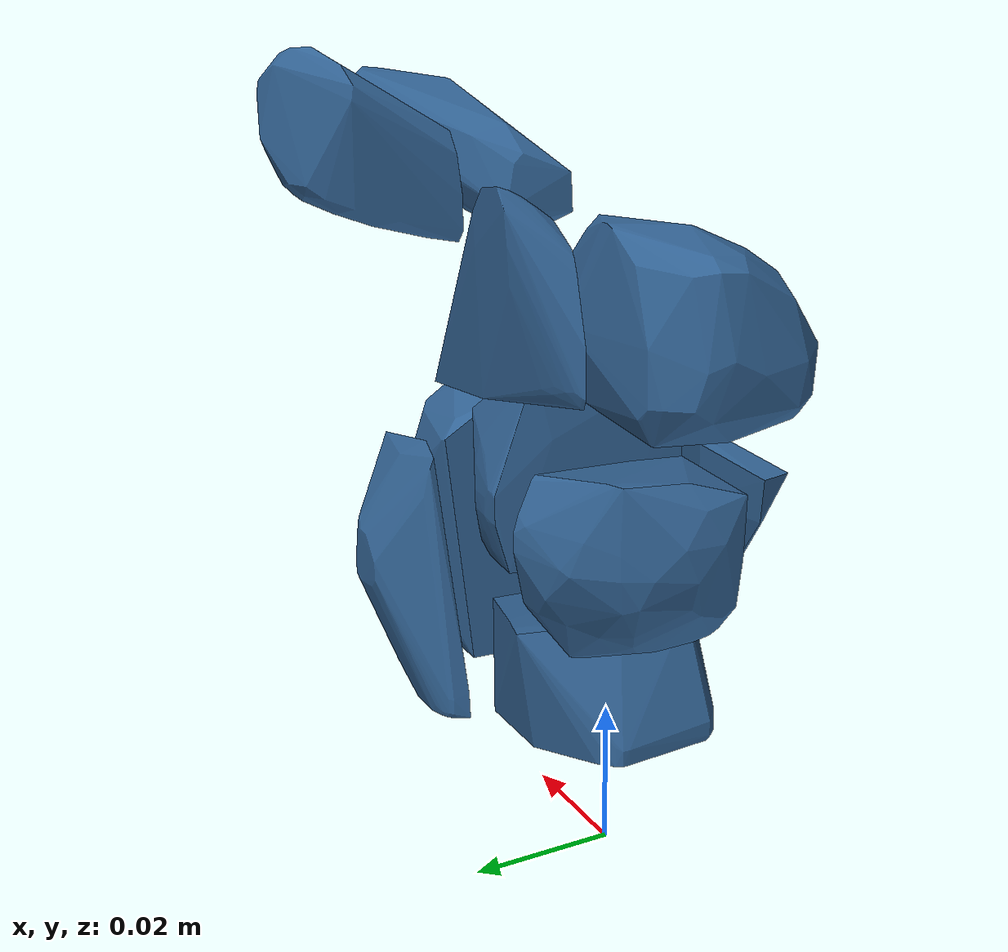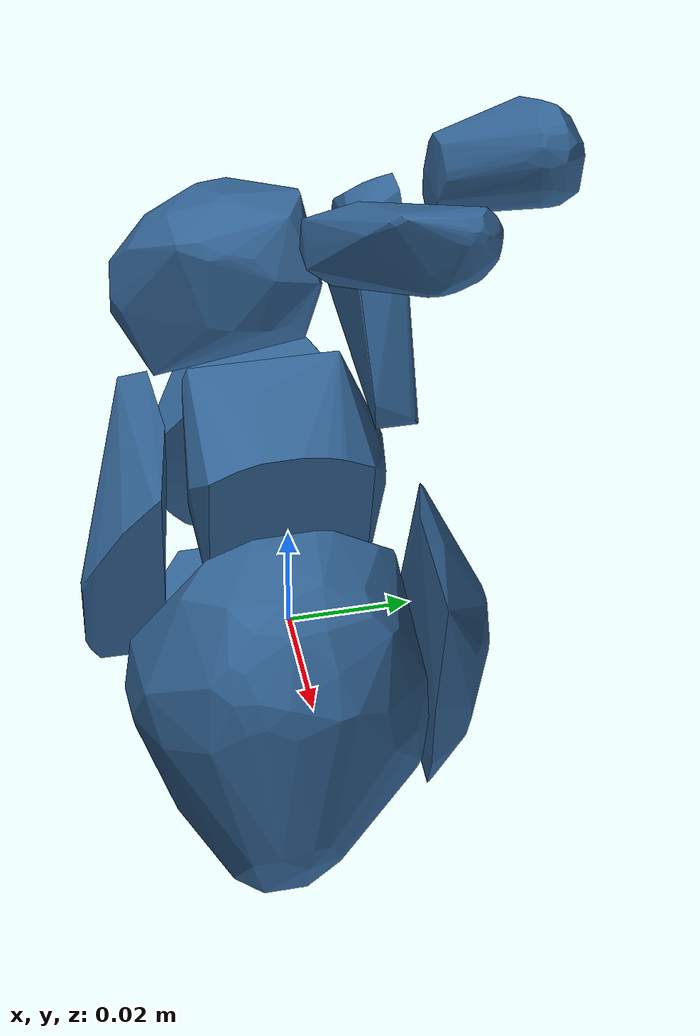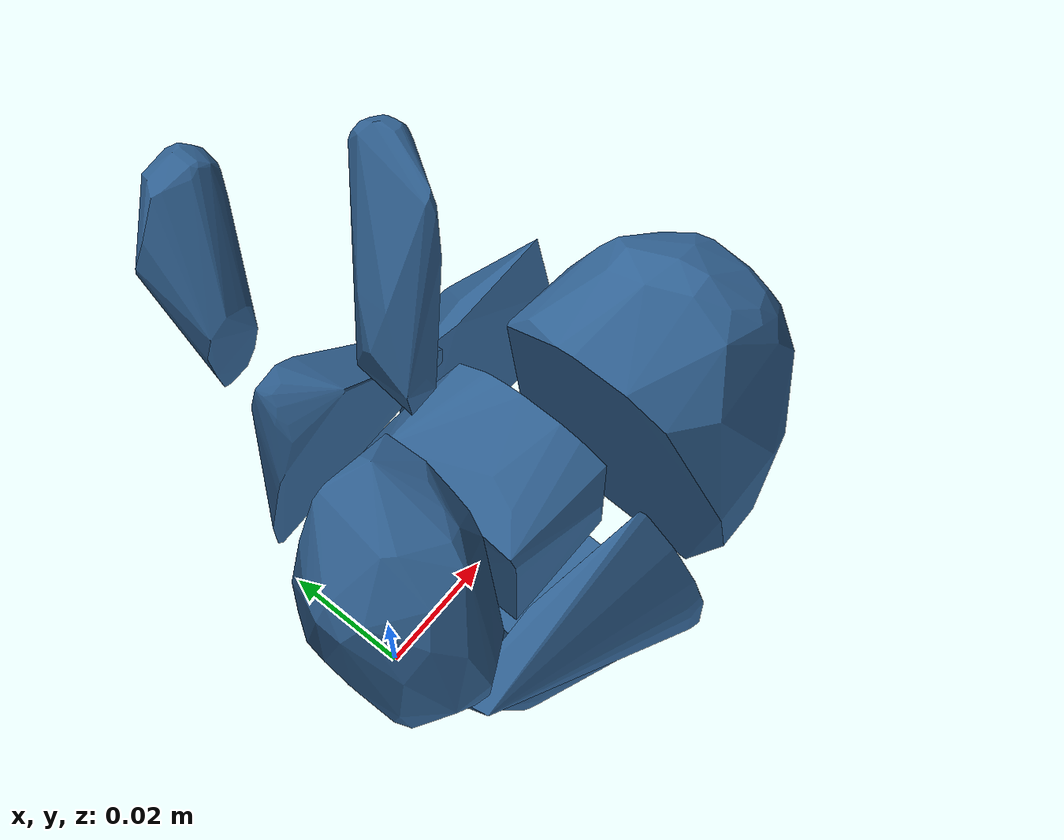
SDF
<?xml version='1.0' encoding='UTF-8'?>
<!-- This SDF was autogenerated by obj_to_drake_sdf.py -->
<sdf version="1.7">
  <model name="Stanford_Bunny">
    <link name="Stanford_Bunny">
      <inertial>
        <pose>0 0 0 0 0 0</pose>
        <mass>0.05</mass>
        <inertia>
          <ixx>3.8901341e-05</ixx>
          <iyy>5.7429647e-05</iyy>
          <izz>4.1887696e-05</izz>
          <ixy>2.250496e-06</ixy>
          <ixz>1.06405e-05</ixz>
          <iyz>-5.1878796e-06</iyz>
        </inertia>
      </inertial>
      <visual name="convex_0">
        <pose>0 0 0 0 0 0</pose>
        <geometry>
          <mesh>
            <uri>Stanford_Bunny_convex_0.obj</uri>
          </mesh>
        </geometry>
        <material>
          <diffuse>0.19607843137254902 0.39215686274509803 0.5882352941176471 1</diffuse>
        </material>
      </visual>
      <collision name="convex_0_volume">
        <pose>0 0 0 0 0 0</pose>
        <geometry>
          <mesh>
            <uri>Stanford_Bunny_convex_0.obj</uri>
          </mesh>
        </geometry>
        <drake:proximity_properties xmlns:drake="uri:drake">
          <drake:compliant_hydroelastic/>
          <drake:hydroelastic_modulus> 3.0e7 </drake:hydroelastic_modulus>
          <drake:mesh_resolution_hint> 0.02 </drake:mesh_resolution_hint>
          <drake:hunt_crossley_dissipation>10</drake:hunt_crossley_dissipation>
          <drake:mu_dynamic>0.3</drake:mu_dynamic>
        </drake:proximity_properties>
      </collision>
      <visual name="convex_1">
        <pose>0 0 0 0 0 0</pose>
        <geometry>
          <mesh>
            <uri>Stanford_Bunny_convex_1.obj</uri>
          </mesh>
        </geometry>
        <material>
          <diffuse>0.19607843137254902 0.39215686274509803 0.5882352941176471 1</diffuse>
        </material>
      </visual>
      <collision name="convex_1_volume">
        <pose>0 0 0 0 0 0</pose>
        <geometry>
          <mesh>
            <uri>Stanford_Bunny_convex_1.obj</uri>
          </mesh>
        </geometry>
        <drake:proximity_properties xmlns:drake="uri:drake">
          <drake:compliant_hydroelastic/>
          <drake:hydroelastic_modulus> 3.0e7 </drake:hydroelastic_modulus>
          <drake:mesh_resolution_hint> 0.02 </drake:mesh_resolution_hint>
          <drake:hunt_crossley_dissipation>10</drake:hunt_crossley_dissipation>
          <drake:mu_dynamic>0.3</drake:mu_dynamic>
        </drake:proximity_properties>
      </collision>
      <visual name="convex_2">
        <pose>0 0 0 0 0 0</pose>
        <geometry>
          <mesh>
            <uri>Stanford_Bunny_convex_2.obj</uri>
          </mesh>
        </geometry>
        <material>
          <diffuse>0.19607843137254902 0.39215686274509803 0.5882352941176471 1</diffuse>
        </material>
      </visual>
      <collision name="convex_2_volume">
        <pose>0 0 0 0 0 0</pose>
        <geometry>
          <mesh>
            <uri>Stanford_Bunny_convex_2.obj</uri>
          </mesh>
        </geometry>
        <drake:proximity_properties xmlns:drake="uri:drake">
          <drake:compliant_hydroelastic/>
          <drake:hydroelastic_modulus> 3.0e7 </drake:hydroelastic_modulus>
          <drake:mesh_resolution_hint> 0.02 </drake:mesh_resolution_hint>
          <drake:hunt_crossley_dissipation>10</drake:hunt_crossley_dissipation>
          <drake:mu_dynamic>0.3</drake:mu_dynamic>
        </drake:proximity_properties>
      </collision>
      <visual name="convex_3">
        <pose>0 0 0 0 0 0</pose>
        <geometry>
          <mesh>
            <uri>Stanford_Bunny_convex_3.obj</uri>
          </mesh>
        </geometry>
        <material>
          <diffuse>0.19607843137254902 0.39215686274509803 0.5882352941176471 1</diffuse>
        </material>
      </visual>
      <collision name="convex_3_volume">
        <pose>0 0 0 0 0 0</pose>
        <geometry>
          <mesh>
            <uri>Stanford_Bunny_convex_3.obj</uri>
          </mesh>
        </geometry>
        <drake:proximity_properties xmlns:drake="uri:drake">
          <drake:compliant_hydroelastic/>
          <drake:hydroelastic_modulus> 3.0e7 </drake:hydroelastic_modulus>
          <drake:mesh_resolution_hint> 0.02 </drake:mesh_resolution_hint>
          <drake:hunt_crossley_dissipation>10</drake:hunt_crossley_dissipation>
          <drake:mu_dynamic>0.3</drake:mu_dynamic>
        </drake:proximity_properties>
      </collision>
      <visual name="convex_4">
        <pose>0 0 0 0 0 0</pose>
        <geometry>
          <mesh>
            <uri>Stanford_Bunny_convex_4.obj</uri>
          </mesh>
        </geometry>
        <material>
          <diffuse>0.19607843137254902 0.39215686274509803 0.5882352941176471 1</diffuse>
        </material>
      </visual>
      <collision name="convex_4_volume">
        <pose>0 0 0 0 0 0</pose>
        <geometry>
          <mesh>
            <uri>Stanford_Bunny_convex_4.obj</uri>
          </mesh>
        </geometry>
        <drake:proximity_properties xmlns:drake="uri:drake">
          <drake:compliant_hydroelastic/>
          <drake:hydroelastic_modulus> 3.0e7 </drake:hydroelastic_modulus>
          <drake:mesh_resolution_hint> 0.02 </drake:mesh_resolution_hint>
          <drake:hunt_crossley_dissipation>10</drake:hunt_crossley_dissipation>
          <drake:mu_dynamic>0.3</drake:mu_dynamic>
        </drake:proximity_properties>
      </collision>
      <visual name="convex_5">
        <pose>0 0 0 0 0 0</pose>
        <geometry>
          <mesh>
            <uri>Stanford_Bunny_convex_5.obj</uri>
          </mesh>
        </geometry>
        <material>
          <diffuse>0.19607843137254902 0.39215686274509803 0.5882352941176471 1</diffuse>
        </material>
      </visual>
      <collision name="convex_5_volume">
        <pose>0 0 0 0 0 0</pose>
        <geometry>
          <mesh>
            <uri>Stanford_Bunny_convex_5.obj</uri>
          </mesh>
        </geometry>
        <drake:proximity_properties xmlns:drake="uri:drake">
          <drake:compliant_hydroelastic/>
          <drake:hydroelastic_modulus> 3.0e7 </drake:hydroelastic_modulus>
          <drake:mesh_resolution_hint> 0.02 </drake:mesh_resolution_hint>
          <drake:hunt_crossley_dissipation>10</drake:hunt_crossley_dissipation>
          <drake:mu_dynamic>0.3</drake:mu_dynamic>
        </drake:proximity_properties>
      </collision>
      <visual name="convex_6">
        <pose>0 0 0 0 0 0</pose>
        <geometry>
          <mesh>
            <uri>Stanford_Bunny_convex_6.obj</uri>
          </mesh>
        </geometry>
        <material>
          <diffuse>0.19607843137254902 0.39215686274509803 0.5882352941176471 1</diffuse>
        </material>
      </visual>
      <collision name="convex_6_volume">
        <pose>0 0 0 0 0 0</pose>
        <geometry>
          <mesh>
            <uri>Stanford_Bunny_convex_6.obj</uri>
          </mesh>
        </geometry>
        <drake:proximity_properties xmlns:drake="uri:drake">
          <drake:compliant_hydroelastic/>
          <drake:hydroelastic_modulus> 3.0e7 </drake:hydroelastic_modulus>
          <drake:mesh_resolution_hint> 0.02 </drake:mesh_resolution_hint>
          <drake:hunt_crossley_dissipation>10</drake:hunt_crossley_dissipation>
          <drake:mu_dynamic>0.3</drake:mu_dynamic>
        </drake:proximity_properties>
      </collision>
      <visual name="convex_7">
        <pose>0 0 0 0 0 0</pose>
        <geometry>
          <mesh>
            <uri>Stanford_Bunny_convex_7.obj</uri>
          </mesh>
        </geometry>
        <material>
          <diffuse>0.19607843137254902 0.39215686274509803 0.5882352941176471 1</diffuse>
        </material>
      </visual>
      <collision name="convex_7_volume">
        <pose>0 0 0 0 0 0</pose>
        <geometry>
          <mesh>
            <uri>Stanford_Bunny_convex_7.obj</uri>
          </mesh>
        </geometry>
        <drake:proximity_properties xmlns:drake="uri:drake">
          <drake:compliant_hydroelastic/>
          <drake:hydroelastic_modulus> 3.0e7 </drake:hydroelastic_modulus>
          <drake:mesh_resolution_hint> 0.02 </drake:mesh_resolution_hint>
          <drake:hunt_crossley_dissipation>10</drake:hunt_crossley_dissipation>
          <drake:mu_dynamic>0.3</drake:mu_dynamic>
        </drake:proximity_properties>
      </collision>
      <visual name="convex_8">
        <pose>0 0 0 0 0 0</pose>
        <geometry>
          <mesh>
            <uri>Stanford_Bunny_convex_8.obj</uri>
          </mesh>
        </geometry>
        <material>
          <diffuse>0.19607843137254902 0.39215686274509803 0.5882352941176471 1</diffuse>
        </material>
      </visual>
      <collision name="convex_8_volume">
        <pose>0 0 0 0 0 0</pose>
        <geometry>
          <mesh>
            <uri>Stanford_Bunny_convex_8.obj</uri>
          </mesh>
        </geometry>
        <drake:proximity_properties xmlns:drake="uri:drake">
          <drake:compliant_hydroelastic/>
          <drake:hydroelastic_modulus> 3.0e7 </drake:hydroelastic_modulus>
          <drake:mesh_resolution_hint> 0.02 </drake:mesh_resolution_hint>
          <drake:hunt_crossley_dissipation>10</drake:hunt_crossley_dissipation>
          <drake:mu_dynamic>0.3</drake:mu_dynamic>
        </drake:proximity_properties>
      </collision>
      <visual name="convex_9">
        <pose>0 0 0 0 0 0</pose>
        <geometry>
          <mesh>
            <uri>Stanford_Bunny_convex_9.obj</uri>
          </mesh>
        </geometry>
        <material>
          <diffuse>0.19607843137254902 0.39215686274509803 0.5882352941176471 1</diffuse>
        </material>
      </visual>
      <collision name="convex_9_volume">
        <pose>0 0 0 0 0 0</pose>
        <geometry>
          <mesh>
            <uri>Stanford_Bunny_convex_9.obj</uri>
          </mesh>
        </geometry>
        <drake:proximity_properties xmlns:drake="uri:drake">
          <drake:compliant_hydroelastic/>
          <drake:hydroelastic_modulus> 3.0e7 </drake:hydroelastic_modulus>
          <drake:mesh_resolution_hint> 0.02 </drake:mesh_resolution_hint>
          <drake:hunt_crossley_dissipation>10</drake:hunt_crossley_dissipation>
          <drake:mu_dynamic>0.3</drake:mu_dynamic>
        </drake:proximity_properties>
      </collision>
    </link>
  </model>
</sdf>
